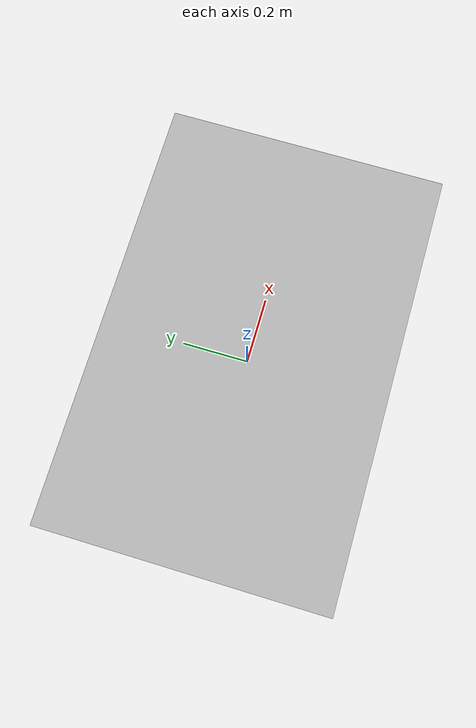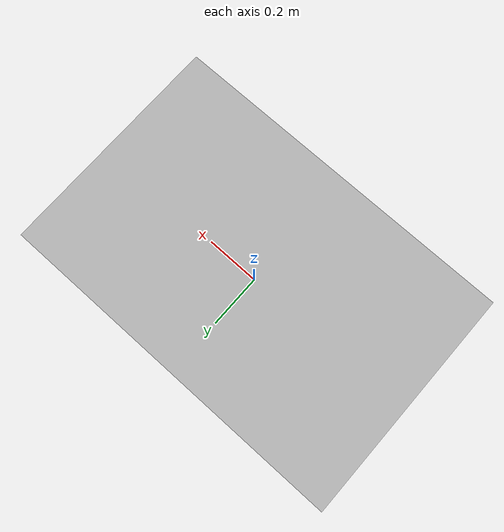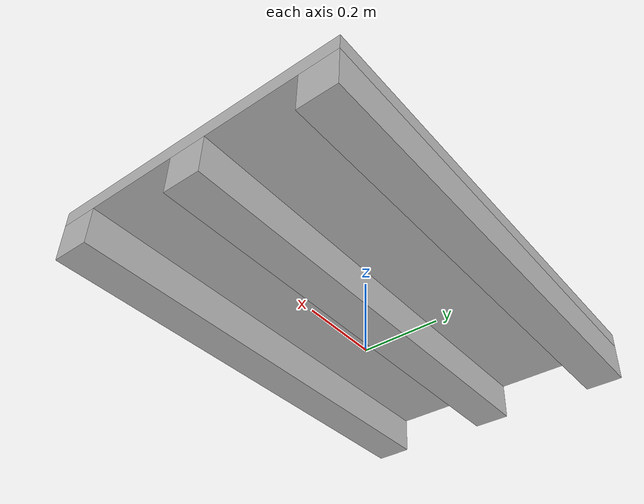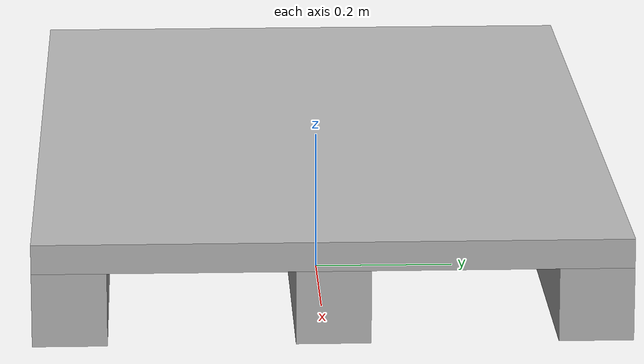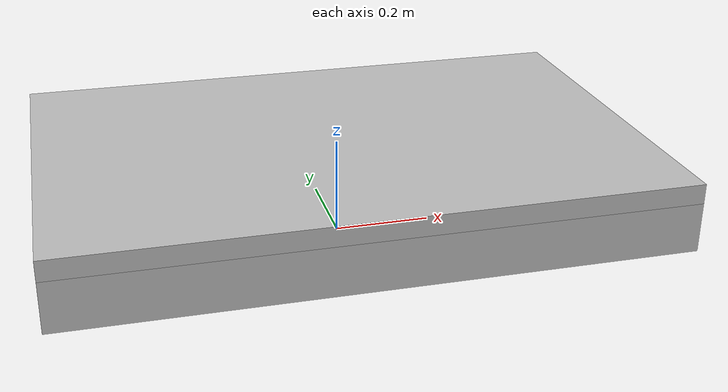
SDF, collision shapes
<?xml version='1.0'?>
<sdf version="1.6">
    <model name="pallet">
        <pose frame="">0 0 0.07 0 0 0</pose>
        <self_collide>false</self_collide>
        <!-- BASE_LINK FRAME -->
        <link name="pallet_base">
            <pose frame="">0 0 0 0 0 0</pose>
            <collision name="pallet_top_collision">
                <pose>0 0 0.125 0 0 0</pose>
                <geometry>
                    <box>
                        <size>1.22 0.8 0.04</size>
                    </box>
                </geometry>
            </collision>
            <collision name="pallet_center_collision">
                <pose>0 0 0.055 0 0 0</pose>
                <geometry>
                    <box>
                        <size>1.22 0.1 0.1</size>
                    </box>
                </geometry>
            </collision>
            <collision name="pallet_left_collision">
                <pose>0 -0.35 0.055 0 0 0</pose>
                <geometry>
                    <box>
                        <size>1.22 0.1 0.1</size>
                    </box>
                </geometry>
            </collision>
            <collision name="pallet_right_collision">
                <pose>0 0.35 0.055 0 0 0</pose>
                <geometry>
                    <box>
                        <size>1.22 0.1 0.1</size>
                    </box>
                </geometry>
            </collision>
            <visual name="pallet_visual">
                <pose frame="">0 0 0 0 0 0</pose>
                <geometry>
                    <mesh>
                        <scale>1 1 1</scale>
                        <uri>https://fuel.ignitionrobotics.org/1.0/movai/models/pallet/2/files/meshes/pallet.dae</uri>
                    </mesh>
                </geometry>
            </visual>
        </link>
        <static>0</static>
    </model>
</sdf>
